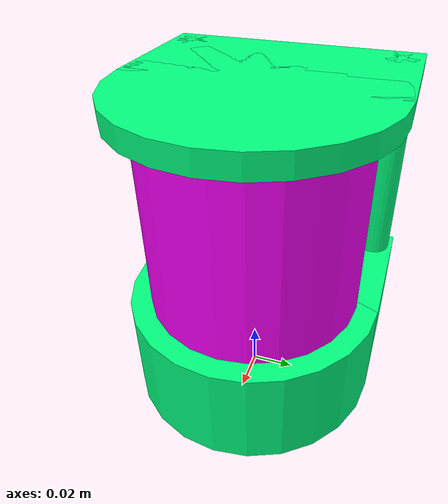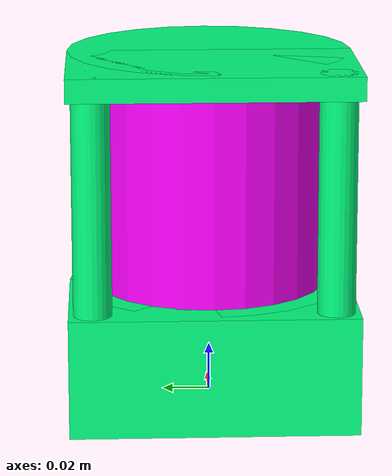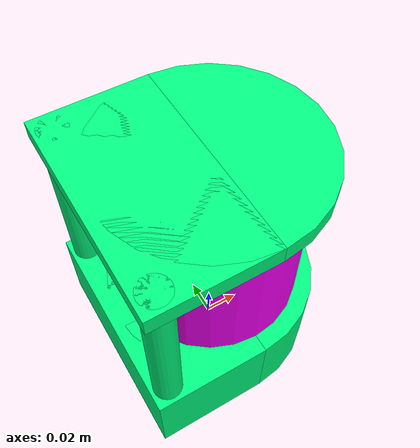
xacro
<?xml version="1.0"?>
<robot xmlns:xacro="http://www.ros.org/wiki/xacro" name="helios16p">
  <!--
  Lidar URDF/XACRO
  Descrizione: Modello base del Lidar Helios 16P della Robosense
  Autore: Gabriele Barletta
  Data: 10/12/25
  Licenza: GNU GPL
  -->

  <!-- Colori -->
  <xacro:property name="waterblue" value="0 1 0.5 1"/>
  <xacro:property name="purple" value="1 0 1 1"/>

  <!-- Dimensioni ricorrenti -->
  <xacro:property name="base_box_size" value="0.065 0.12 0.05"/>
  <xacro:property name="top_box_size" value="0.065 0.12 0.01"/>
  <xacro:property name="base_round_radius" value="0.06"/>
  <xacro:property name="base_round_length" value="0.05"/>
  <xacro:property name="top_round_radius" value="0.06"/>
  <xacro:property name="top_round_length" value="0.01"/>
  <xacro:property name="pillar_radius" value="0.008"/>
  <xacro:property name="pillar_length" value="0.1"/>
  <xacro:property name="lidar_radius" value="0.05"/>
  <xacro:property name="lidar_length" value="0.1"/>

  <!-- Posizioni ricorrenti -->
  <xacro:property name="base_round_z" value="0.025"/>
  <xacro:property name="top_z" value="0.145"/>
  <xacro:property name="pillar_z" value="0.05"/>
  <xacro:property name="lidar_z" value="0.05"/>

  <!-- Link principale - è la parte "squadrata" della base del lidar -->
  <link name="base_link">
    <visual>
      <geometry>
        <box size="${base_box_size}"/>
      </geometry>
      <material name="waterblue">
        <color rgba="${waterblue}"/>
      </material>
      <origin xyz="-0.0325 0 0.025" rpy="0 0 0"/>
    </visual>
  </link>

<!-- parte curva inferiore montata sul link principale-->
  <link name="base_round_part">
    <visual>
      <geometry>
        <cylinder radius="${base_round_radius}" length="${base_round_length}"/>
      </geometry>
      <material name="waterblue">
        <color rgba="${waterblue}"/>
      </material>
      <origin xyz="0 0 0" rpy="0 0 0"/>
    </visual>
  </link>
  <joint name="base_round_to_base" type="fixed">
    <parent link="base_link"/>
    <child link="base_round_part"/>
    <origin xyz="0 0 ${base_round_z}" rpy="0 0 0"/>
  </joint>

<!-- parte non curva superiore montata sul link principale-->
  <link name="top_link">
    <visual>
      <geometry>
        <box size="${top_box_size}"/>
      </geometry>
      <material name="waterblue">
        <color rgba="${waterblue}"/>
      </material>
      <origin xyz="-0.0325 0 0" rpy="0 0 0"/>
    </visual>
  </link>
  <joint name="top_to_base" type="fixed">
    <parent link="base_link"/>
    <child link="top_link"/>
    <origin xyz="0 0 ${top_z}" rpy="0 0 0"/>
  </joint>

<!-- parte curva superiore montata sul link principale-->
<link name="top_round_part">
    <visual>
      <geometry>
        <cylinder radius="${top_round_radius}" length="${top_round_length}"/>
      </geometry>
      <material name="waterblue">
        <color rgba="${waterblue}"/>
      </material>
      <origin xyz="0 0 0" rpy="0 0 0"/>
    </visual>
  </link>
  <joint name="top_round_to_base" type="fixed">
    <parent link="base_link"/>
    <child link="top_round_part"/>
    <origin xyz="0 0 ${top_z}" rpy="0 0 0"/>
  </joint>

  <!-- Pilastro montato sul lato sinistro -->
  <link name="sx_pillar">
    <visual>
      <geometry>
        <cylinder radius="${pillar_radius}" length="${pillar_length}"/>
      </geometry>
      <material name="waterblue">
        <color rgba="${waterblue}"/>
      </material>
      <origin xyz="0 0 ${pillar_z}" rpy="0 0 0"/>
    </visual>
  </link>
  <joint name="sx_pillar_to_base" type="fixed">
    <parent link="base_link"/>
    <child link="sx_pillar"/>
    <origin xyz="-0.055 0.05 ${pillar_z}" rpy="0 0 0"/>
  </joint>

  <!-- Pilastro montato sul lato destro -->
  <link name="dx_pillar">
    <visual>
      <geometry>
        <cylinder radius="${pillar_radius}" length="${pillar_length}"/>
      </geometry>
      <material name="waterblue">
        <color rgba="${waterblue}"/>
      </material>
      <origin xyz="0 0 ${pillar_z}" rpy="0 0 0"/>
    </visual>
  </link>
  <joint name="dx_pillar_to_base" type="fixed">
    <parent link="base_link"/>
    <child link="dx_pillar"/>
    <origin xyz="-0.055 -0.05 ${pillar_z}" rpy="0 0 0"/>
  </joint>

  <!-- Lidar montato sulla base -->
 <link name="lidar_link">
    <visual>
      <geometry>
        <cylinder radius="${lidar_radius}" length="${lidar_length}"/>
      </geometry>
      <material name="purple">
        <color rgba="${purple}"/>
      </material>
      <origin xyz="0 0 0.04" rpy="0 0 0"/>
    </visual>
  </link>
  <joint name="base_to_lidar" type="fixed">
    <parent link="base_link"/>
    <child link="lidar_link"/>
    <origin xyz="0 0 ${lidar_z}" rpy="0 0 0"/>
  </joint>

</robot>
